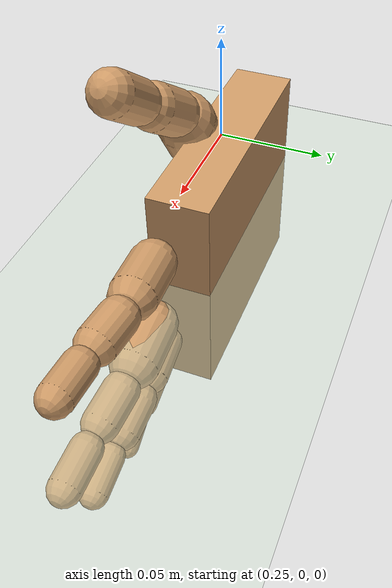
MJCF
<mujoco model="humanoid">
  <compiler coordinate="local"/>
  <default>
    <joint damping="0.0" armature="0.01" stiffness="0.0" limited="true"/>
    <geom conaffinity="1" condim="3" contype="7" margin="0.001" rgba="0.8 0.6 .4 1"/>
  </default>
  <asset>
    <texture type="skybox" builtin="gradient" rgb1=".4 .5 .6" rgb2="0 0 0" width="100" height="100"/>
    <texture builtin="flat" height="1278" mark="cross" markrgb="1 1 1" name="texgeom" random="0.01" rgb1="0.8 0.6 0.4" rgb2="0.8 0.6 0.4" type="cube" width="127"/>
    <texture builtin="checker" height="100" name="texplane" rgb1="0 0 0" rgb2="0.8 0.8 0.8" type="2d" width="100"/>
    <material name="MatPlane" reflectance="0.5" shininess="1" specular="1" texrepeat="60 60" texture="texplane"/>
    <material name="geom" texture="texgeom" texuniform="true"/>
  </asset>
  <worldbody>
    <light cutoff="100" diffuse="1 1 1" dir="-0 0 -1.3" directional="true" exponent="1" pos="0 0 1.3" specular=".1 .1 .1"/>
    <geom conaffinity="1" condim="3" name="floor" pos="0 0 0" rgba="0.8 0.9 0.8 1" size="100 100 .2" type="plane" material="MatPlane"/>
      <body name="L_Wrist" pos="0.252 0.0232 -0.0025">
        <joint name="L_Wrist_x" type="hinge" pos="0 0 0" axis="1 0 0" user="100 1 1 150 1 1" armature="0.01" range="-180.0000 180.0000" damping="0" stiffness="0"/>
        <joint name="L_Wrist_y" type="hinge" pos="0 0 0" axis="0 1 0" user="100 1 1 150 1 1" armature="0.01" range="-180.0000 180.0000" damping="0" stiffness="0"/>
        <joint name="L_Wrist_z" type="hinge" pos="0 0 0" axis="0 0 1" user="100 1 1 150 1 1" armature="0.01" range="-180.0000 180.0000" damping="0" stiffness="0"/>
        <geom type="box" pos="0.0523 -0.0013 -0.0031" size="0.0484 0.0122 0.046" quat="1.0000 0.0000 0.0000 0.0000" density="1198.335963" name="L_Wrist"/>
        <body name="L_Index1" pos="0.1019 -0.0087 0.0194">
          <joint name="L_Index1_x" type="hinge" pos="0 0 0" axis="1 0 0" user="100 10 1 150" armature="0.01" range="-180.0000 180.0000" damping="0" stiffness="0"/>
          <joint name="L_Index1_y" type="hinge" pos="0 0 0" axis="0 1 0" user="100 10 1 150" armature="0.01" range="-180.0000 180.0000" damping="0" stiffness="0"/>
          <joint name="L_Index1_z" type="hinge" pos="0 0 0" axis="0 0 1" user="100 10 1 150" armature="0.01" range="-180.0000 180.0000" damping="0" stiffness="0"/>
          <geom type="capsule" contype="1" conaffinity="1" density="1000" fromto="0.0064 0.0004 0.0006 0.0256 0.0018 0.0024" size="0.0091" name="L_Index1"/>
          <body name="L_Index2" pos="0.0319 0.0022 0.003">
            <joint name="L_Index2_x" type="hinge" pos="0 0 0" axis="1 0 0" user="100 10 1 150" armature="0.01" range="-180.0000 180.0000" damping="0" stiffness="0"/>
            <joint name="L_Index2_y" type="hinge" pos="0 0 0" axis="0 1 0" user="100 10 1 150" armature="0.01" range="-180.0000 180.0000" damping="0" stiffness="0"/>
            <joint name="L_Index2_z" type="hinge" pos="0 0 0" axis="0 0 1" user="100 10 1 150" armature="0.01" range="-180.0000 180.0000" damping="0" stiffness="0"/>
            <geom type="capsule" contype="1" conaffinity="1" density="1000" fromto="0.0045 -0.0005 0.0000 0.0180 -0.0019 0.0000" size="0.0076" name="L_Index2"/>
            <body name="L_Index3" pos="0.0225 -0.0024 0.0001">
              <joint name="L_Index3_x" type="hinge" pos="0 0 0" axis="1 0 0" user="100 10 1 150" armature="0.01" range="-180.0000 180.0000" damping="0" stiffness="0"/>
              <joint name="L_Index3_y" type="hinge" pos="0 0 0" axis="0 1 0" user="100 10 1 150" armature="0.01" range="-180.0000 180.0000" damping="0" stiffness="0"/>
              <joint name="L_Index3_z" type="hinge" pos="0 0 0" axis="0 0 1" user="100 10 1 150" armature="0.01" range="-180.0000 180.0000" damping="0" stiffness="0"/>
              <geom type="capsule" contype="1" conaffinity="1" density="1000" fromto="0.0049 -0.0001 0.0004 0.0196 -0.0003 0.0016" size="0.0064" name="L_Index3"/>
            </body>
          </body>
        </body>
        <body name="L_Middle1" pos="0.1094 -0.0063 -0.004">
          <joint name="L_Middle1_x" type="hinge" pos="0 0 0" axis="1 0 0" user="100 10 1 150" armature="0.01" range="-180.0000 180.0000" damping="0" stiffness="0"/>
          <joint name="L_Middle1_y" type="hinge" pos="0 0 0" axis="0 1 0" user="100 10 1 150" armature="0.01" range="-180.0000 180.0000" damping="0" stiffness="0"/>
          <joint name="L_Middle1_z" type="hinge" pos="0 0 0" axis="0 0 1" user="100 10 1 150" armature="0.01" range="-180.0000 180.0000" damping="0" stiffness="0"/>
          <geom type="capsule" contype="1" conaffinity="1" density="1000" fromto="0.0061 0.0002 -0.0008 0.0245 0.0006 -0.0032" size="0.0094" name="L_Middle1"/>
          <body name="L_Middle2" pos="0.0306 0.0008 -0.004">
            <joint name="L_Middle2_x" type="hinge" pos="0 0 0" axis="1 0 0" user="100 10 1 150" armature="0.01" range="-180.0000 180.0000" damping="0" stiffness="0"/>
            <joint name="L_Middle2_y" type="hinge" pos="0 0 0" axis="0 1 0" user="100 10 1 150" armature="0.01" range="-180.0000 180.0000" damping="0" stiffness="0"/>
            <joint name="L_Middle2_z" type="hinge" pos="0 0 0" axis="0 0 1" user="100 10 1 150" armature="0.01" range="-180.0000 180.0000" damping="0" stiffness="0"/>
            <geom type="capsule" contype="1" conaffinity="1" density="1000" fromto="0.0047 -0.0004 -0.0008 0.0188 -0.0016 -0.0033" size="0.007" name="L_Middle2"/>
            <body name="L_Middle3" pos="0.0235 -0.002 -0.0041">
              <joint name="L_Middle3_x" type="hinge" pos="0 0 0" axis="1 0 0" user="100 10 1 150" armature="0.01" range="-180.0000 180.0000" damping="0" stiffness="0"/>
              <joint name="L_Middle3_y" type="hinge" pos="0 0 0" axis="0 1 0" user="100 10 1 150" armature="0.01" range="-180.0000 180.0000" damping="0" stiffness="0"/>
              <joint name="L_Middle3_z" type="hinge" pos="0 0 0" axis="0 0 1" user="100 10 1 150" armature="0.01" range="-180.0000 180.0000" damping="0" stiffness="0"/>
              <geom type="capsule" contype="1" conaffinity="1" density="1000" fromto="0.0051 -0.0000 -0.0004 0.0204 -0.0000 -0.0017" size="0.0061" name="L_Middle3"/>
            </body>
          </body>
        </body>
        <body name="L_Pinky1" pos="0.084 -0.0145 -0.0437">
          <joint name="L_Pinky1_x" type="hinge" pos="0 0 0" axis="1 0 0" user="100 10 1 150" armature="0.01" range="-180.0000 180.0000" damping="0" stiffness="0"/>
          <joint name="L_Pinky1_y" type="hinge" pos="0 0 0" axis="0 1 0" user="100 10 1 150" armature="0.01" range="-180.0000 180.0000" damping="0" stiffness="0"/>
          <joint name="L_Pinky1_z" type="hinge" pos="0 0 0" axis="0 0 1" user="100 10 1 150" armature="0.01" range="-180.0000 180.0000" damping="0" stiffness="0"/>
          <geom type="capsule" contype="1" conaffinity="1" density="1000" fromto="0.0031 -0.0002 -0.0024 0.0124 -0.0009 -0.0096" size="0.0067" name="L_Pinky1"/>
          <body name="L_Pinky2" pos="0.0155 -0.0011 -0.012">
            <joint name="L_Pinky2_x" type="hinge" pos="0 0 0" axis="1 0 0" user="100 10 1 150" armature="0.01" range="-180.0000 180.0000" damping="0" stiffness="0"/>
            <joint name="L_Pinky2_y" type="hinge" pos="0 0 0" axis="0 1 0" user="100 10 1 150" armature="0.01" range="-180.0000 180.0000" damping="0" stiffness="0"/>
            <joint name="L_Pinky2_z" type="hinge" pos="0 0 0" axis="0 0 1" user="100 10 1 150" armature="0.01" range="-180.0000 180.0000" damping="0" stiffness="0"/>
            <geom type="capsule" contype="1" conaffinity="1" density="1000" fromto="0.0031 -0.0003 -0.0022 0.0124 -0.0013 -0.0090" size="0.0065" name="L_Pinky2"/>
            <body name="L_Pinky3" pos="0.0155 -0.0017 -0.0112">
              <joint name="L_Pinky3_x" type="hinge" pos="0 0 0" axis="1 0 0" user="100 10 1 150" armature="0.01" range="-180.0000 180.0000" damping="0" stiffness="0"/>
              <joint name="L_Pinky3_y" type="hinge" pos="0 0 0" axis="0 1 0" user="100 10 1 150" armature="0.01" range="-180.0000 180.0000" damping="0" stiffness="0"/>
              <joint name="L_Pinky3_z" type="hinge" pos="0 0 0" axis="0 0 1" user="100 10 1 150" armature="0.01" range="-180.0000 180.0000" damping="0" stiffness="0"/>
              <geom type="capsule" contype="1" conaffinity="1" density="1000" fromto="0.0035 0.0001 -0.0018 0.0140 0.0003 -0.0074" size="0.005" name="L_Pinky3"/>
            </body>
          </body>
        </body>
        <body name="L_Ring1" pos="0.0974 -0.0093 -0.0273">
          <joint name="L_Ring1_x" type="hinge" pos="0 0 0" axis="1 0 0" user="100 10 1 150" armature="0.01" range="-180.0000 180.0000" damping="0" stiffness="0"/>
          <joint name="L_Ring1_y" type="hinge" pos="0 0 0" axis="0 1 0" user="100 10 1 150" armature="0.01" range="-180.0000 180.0000" damping="0" stiffness="0"/>
          <joint name="L_Ring1_z" type="hinge" pos="0 0 0" axis="0 0 1" user="100 10 1 150" armature="0.01" range="-180.0000 180.0000" damping="0" stiffness="0"/>
          <geom type="capsule" contype="1" conaffinity="1" density="1000" fromto="0.0056 0.0003 -0.0011 0.0224 0.0012 -0.0042" size="0.008" name="L_Ring1"/>
          <body name="L_Ring2" pos="0.028 0.0015 -0.0053">
            <joint name="L_Ring2_x" type="hinge" pos="0 0 0" axis="1 0 0" user="100 10 1 150" armature="0.01" range="-180.0000 180.0000" damping="0" stiffness="0"/>
            <joint name="L_Ring2_y" type="hinge" pos="0 0 0" axis="0 1 0" user="100 10 1 150" armature="0.01" range="-180.0000 180.0000" damping="0" stiffness="0"/>
            <joint name="L_Ring2_z" type="hinge" pos="0 0 0" axis="0 0 1" user="100 10 1 150" armature="0.01" range="-180.0000 180.0000" damping="0" stiffness="0"/>
            <geom type="capsule" contype="1" conaffinity="1" density="1000" fromto="0.0046 -0.0003 -0.0014 0.0183 -0.0012 -0.0057" size="0.0074" name="L_Ring2"/>
            <body name="L_Ring3" pos="0.0228 -0.0015 -0.0071">
              <joint name="L_Ring3_x" type="hinge" pos="0 0 0" axis="1 0 0" user="100 10 1 150" armature="0.01" range="-180.0000 180.0000" damping="0" stiffness="0"/>
              <joint name="L_Ring3_y" type="hinge" pos="0 0 0" axis="0 1 0" user="100 10 1 150" armature="0.01" range="-180.0000 180.0000" damping="0" stiffness="0"/>
              <joint name="L_Ring3_z" type="hinge" pos="0 0 0" axis="0 0 1" user="100 10 1 150" armature="0.01" range="-180.0000 180.0000" damping="0" stiffness="0"/>
              <geom type="capsule" contype="1" conaffinity="1" density="1000" fromto="0.0050 0.0001 -0.0010 0.0199 0.0004 -0.0041" size="0.0057" name="L_Ring3"/>
            </body>
          </body>
        </body>
        <body name="L_Thumb1" pos="0.0406 -0.018 0.0256">
          <joint name="L_Thumb1_x" type="hinge" pos="0 0 0" axis="1 0 0" user="100 10 1 150" armature="0.01" range="-180.0000 180.0000" damping="0" stiffness="0"/>
          <joint name="L_Thumb1_y" type="hinge" pos="0 0 0" axis="0 1 0" user="100 10 1 150" armature="0.01" range="-180.0000 180.0000" damping="0" stiffness="0"/>
          <joint name="L_Thumb1_z" type="hinge" pos="0 0 0" axis="0 0 1" user="100 10 1 150" armature="0.01" range="-180.0000 180.0000" damping="0" stiffness="0"/>
          <geom type="capsule" contype="1" conaffinity="1" density="1000" fromto="0.0034 0.0002 0.0050 0.0136 0.0008 0.0200" size="0.012" name="L_Thumb1"/>
          <body name="L_Thumb2" pos="0.017 0.001 0.025">
            <joint name="L_Thumb2_x" type="hinge" pos="0 0 0" axis="1 0 0" user="100 10 1 150" armature="0.01" range="-180.0000 180.0000" damping="0" stiffness="0"/>
            <joint name="L_Thumb2_y" type="hinge" pos="0 0 0" axis="0 1 0" user="100 10 1 150" armature="0.01" range="-180.0000 180.0000" damping="0" stiffness="0"/>
            <joint name="L_Thumb2_z" type="hinge" pos="0 0 0" axis="0 0 1" user="100 10 1 150" armature="0.01" range="-180.0000 180.0000" damping="0" stiffness="0"/>
            <geom type="capsule" contype="1" conaffinity="1" density="1000" fromto="0.0041 -0.0010 0.0031 0.0164 -0.0041 0.0124" size="0.0095" name="L_Thumb2"/>
            <body name="L_Thumb3" pos="0.0205 -0.0052 0.0155">
              <joint name="L_Thumb3_x" type="hinge" pos="0 0 0" axis="1 0 0" user="100 10 1 150" armature="0.01" range="-180.0000 180.0000" damping="0" stiffness="0"/>
              <joint name="L_Thumb3_y" type="hinge" pos="0 0 0" axis="0 1 0" user="100 10 1 150" armature="0.01" range="-180.0000 180.0000" damping="0" stiffness="0"/>
              <joint name="L_Thumb3_z" type="hinge" pos="0 0 0" axis="0 0 1" user="100 10 1 150" armature="0.01" range="-180.0000 180.0000" damping="0" stiffness="0"/>
              <geom type="capsule" contype="1" conaffinity="1" density="1000" fromto="0.0045 -0.0006 0.0035 0.0180 -0.0025 0.0140" size="0.0087" name="L_Thumb3"/>
            </body>
          </body>
        </body>
      </body>
  </worldbody>
  <actuator>
    <motor name="L_Wrist_x" joint="L_Wrist_x" gear="1"/>
    <motor name="L_Wrist_y" joint="L_Wrist_y" gear="1"/>
    <motor name="L_Wrist_z" joint="L_Wrist_z" gear="1"/>
    <motor name="L_Index1_x" joint="L_Index1_x" gear="1"/>
    <motor name="L_Index1_y" joint="L_Index1_y" gear="1"/>
    <motor name="L_Index1_z" joint="L_Index1_z" gear="1"/>
    <motor name="L_Index2_x" joint="L_Index2_x" gear="1"/>
    <motor name="L_Index2_y" joint="L_Index2_y" gear="1"/>
    <motor name="L_Index2_z" joint="L_Index2_z" gear="1"/>
    <motor name="L_Index3_x" joint="L_Index3_x" gear="1"/>
    <motor name="L_Index3_y" joint="L_Index3_y" gear="1"/>
    <motor name="L_Index3_z" joint="L_Index3_z" gear="1"/>
    <motor name="L_Middle1_x" joint="L_Middle1_x" gear="1"/>
    <motor name="L_Middle1_y" joint="L_Middle1_y" gear="1"/>
    <motor name="L_Middle1_z" joint="L_Middle1_z" gear="1"/>
    <motor name="L_Middle2_x" joint="L_Middle2_x" gear="1"/>
    <motor name="L_Middle2_y" joint="L_Middle2_y" gear="1"/>
    <motor name="L_Middle2_z" joint="L_Middle2_z" gear="1"/>
    <motor name="L_Middle3_x" joint="L_Middle3_x" gear="1"/>
    <motor name="L_Middle3_y" joint="L_Middle3_y" gear="1"/>
    <motor name="L_Middle3_z" joint="L_Middle3_z" gear="1"/>
    <motor name="L_Pinky1_x" joint="L_Pinky1_x" gear="1"/>
    <motor name="L_Pinky1_y" joint="L_Pinky1_y" gear="1"/>
    <motor name="L_Pinky1_z" joint="L_Pinky1_z" gear="1"/>
    <motor name="L_Pinky2_x" joint="L_Pinky2_x" gear="1"/>
    <motor name="L_Pinky2_y" joint="L_Pinky2_y" gear="1"/>
    <motor name="L_Pinky2_z" joint="L_Pinky2_z" gear="1"/>
    <motor name="L_Pinky3_x" joint="L_Pinky3_x" gear="1"/>
    <motor name="L_Pinky3_y" joint="L_Pinky3_y" gear="1"/>
    <motor name="L_Pinky3_z" joint="L_Pinky3_z" gear="1"/>
    <motor name="L_Ring1_x" joint="L_Ring1_x" gear="1"/>
    <motor name="L_Ring1_y" joint="L_Ring1_y" gear="1"/>
    <motor name="L_Ring1_z" joint="L_Ring1_z" gear="1"/>
    <motor name="L_Ring2_x" joint="L_Ring2_x" gear="1"/>
    <motor name="L_Ring2_y" joint="L_Ring2_y" gear="1"/>
    <motor name="L_Ring2_z" joint="L_Ring2_z" gear="1"/>
    <motor name="L_Ring3_x" joint="L_Ring3_x" gear="1"/>
    <motor name="L_Ring3_y" joint="L_Ring3_y" gear="1"/>
    <motor name="L_Ring3_z" joint="L_Ring3_z" gear="1"/>
    <motor name="L_Thumb1_x" joint="L_Thumb1_x" gear="1"/>
    <motor name="L_Thumb1_y" joint="L_Thumb1_y" gear="1"/>
    <motor name="L_Thumb1_z" joint="L_Thumb1_z" gear="1"/>
    <motor name="L_Thumb2_x" joint="L_Thumb2_x" gear="1"/>
    <motor name="L_Thumb2_y" joint="L_Thumb2_y" gear="1"/>
    <motor name="L_Thumb2_z" joint="L_Thumb2_z" gear="1"/>
    <motor name="L_Thumb3_x" joint="L_Thumb3_x" gear="1"/>
    <motor name="L_Thumb3_y" joint="L_Thumb3_y" gear="1"/>
    <motor name="L_Thumb3_z" joint="L_Thumb3_z" gear="1"/>
  </actuator>
  <sensor>
    <framelinvel name="sensor_L_Wrist_framelinvel" objtype="xbody" objname="L_Wrist"/>
    <framelinvel name="sensor_L_Index1_framelinvel" objtype="xbody" objname="L_Index1"/>
    <framelinvel name="sensor_L_Index2_framelinvel" objtype="xbody" objname="L_Index2"/>
    <framelinvel name="sensor_L_Index3_framelinvel" objtype="xbody" objname="L_Index3"/>
    <framelinvel name="sensor_L_Middle1_framelinvel" objtype="xbody" objname="L_Middle1"/>
    <framelinvel name="sensor_L_Middle2_framelinvel" objtype="xbody" objname="L_Middle2"/>
    <framelinvel name="sensor_L_Middle3_framelinvel" objtype="xbody" objname="L_Middle3"/>
    <framelinvel name="sensor_L_Pinky1_framelinvel" objtype="xbody" objname="L_Pinky1"/>
    <framelinvel name="sensor_L_Pinky2_framelinvel" objtype="xbody" objname="L_Pinky2"/>
    <framelinvel name="sensor_L_Pinky3_framelinvel" objtype="xbody" objname="L_Pinky3"/>
    <framelinvel name="sensor_L_Ring1_framelinvel" objtype="xbody" objname="L_Ring1"/>
    <framelinvel name="sensor_L_Ring2_framelinvel" objtype="xbody" objname="L_Ring2"/>
    <framelinvel name="sensor_L_Ring3_framelinvel" objtype="xbody" objname="L_Ring3"/>
    <framelinvel name="sensor_L_Thumb1_framelinvel" objtype="xbody" objname="L_Thumb1"/>
    <framelinvel name="sensor_L_Thumb2_framelinvel" objtype="xbody" objname="L_Thumb2"/>
    <framelinvel name="sensor_L_Thumb3_framelinvel" objtype="xbody" objname="L_Thumb3"/>
    <frameangvel name="sensor_L_Wrist_frameangvel" objtype="xbody" objname="L_Wrist"/>
    <frameangvel name="sensor_L_Index1_frameangvel" objtype="xbody" objname="L_Index1"/>
    <frameangvel name="sensor_L_Index2_frameangvel" objtype="xbody" objname="L_Index2"/>
    <frameangvel name="sensor_L_Index3_frameangvel" objtype="xbody" objname="L_Index3"/>
    <frameangvel name="sensor_L_Middle1_frameangvel" objtype="xbody" objname="L_Middle1"/>
    <frameangvel name="sensor_L_Middle2_frameangvel" objtype="xbody" objname="L_Middle2"/>
    <frameangvel name="sensor_L_Middle3_frameangvel" objtype="xbody" objname="L_Middle3"/>
    <frameangvel name="sensor_L_Pinky1_frameangvel" objtype="xbody" objname="L_Pinky1"/>
    <frameangvel name="sensor_L_Pinky2_frameangvel" objtype="xbody" objname="L_Pinky2"/>
    <frameangvel name="sensor_L_Pinky3_frameangvel" objtype="xbody" objname="L_Pinky3"/>
    <frameangvel name="sensor_L_Ring1_frameangvel" objtype="xbody" objname="L_Ring1"/>
    <frameangvel name="sensor_L_Ring2_frameangvel" objtype="xbody" objname="L_Ring2"/>
    <frameangvel name="sensor_L_Ring3_frameangvel" objtype="xbody" objname="L_Ring3"/>
    <frameangvel name="sensor_L_Thumb1_frameangvel" objtype="xbody" objname="L_Thumb1"/>
    <frameangvel name="sensor_L_Thumb2_frameangvel" objtype="xbody" objname="L_Thumb2"/>
    <frameangvel name="sensor_L_Thumb3_frameangvel" objtype="xbody" objname="L_Thumb3"/>
  </sensor>
  <size njmax="700" nconmax="700"/>
</mujoco>
